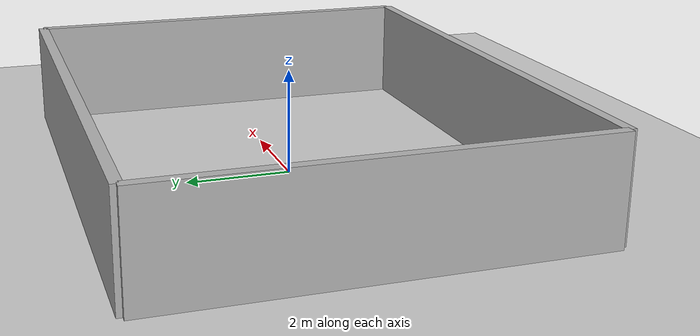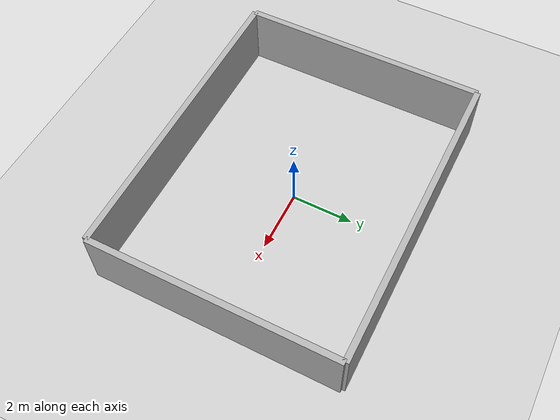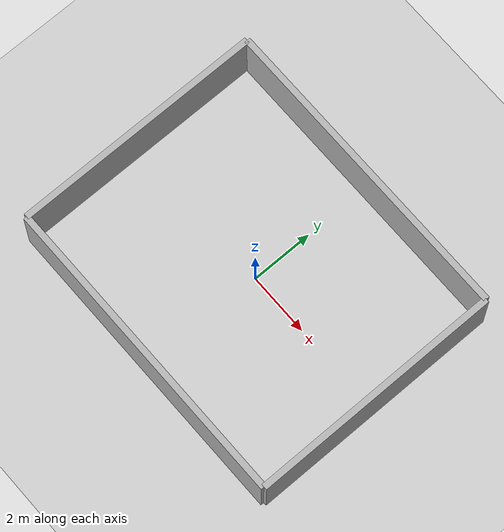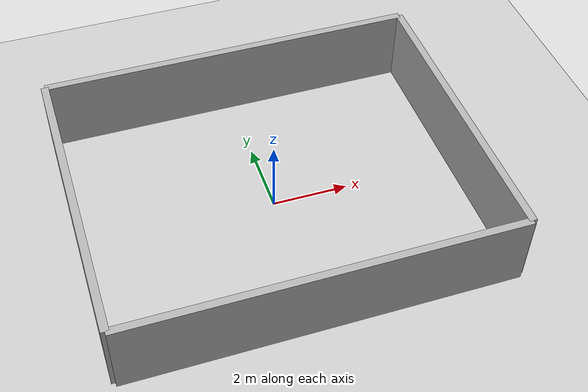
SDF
<?xml version="1.0" ?>
<sdf version="1.8">
  <world name="test_room">

    <!-- Physics settings -->
    <physics name="1ms" type="ignored">
      <max_step_size>0.001</max_step_size>
      <real_time_factor>1.0</real_time_factor>
    </physics>

    <!-- Plugins -->
    <plugin
      filename="gz-sim-physics-system"
      name="gz::sim::systems::Physics">
    </plugin>
    <plugin
      filename="gz-sim-user-commands-system"
      name="gz::sim::systems::UserCommands">
    </plugin>
    <plugin
      filename="gz-sim-scene-broadcaster-system"
      name="gz::sim::systems::SceneBroadcaster">
    </plugin>
    <plugin
      filename="gz-sim-sensors-system"
      name="gz::sim::systems::Sensors">
      <render_engine>ogre2</render_engine>
    </plugin>

    <!-- Sun light -->
    <light type="directional" name="sun">
      <cast_shadows>true</cast_shadows>
      <pose>0 0 10 0 0 0</pose>
      <diffuse>0.8 0.8 0.8 1</diffuse>
      <specular>0.2 0.2 0.2 1</specular>
      <attenuation>
        <range>1000</range>
        <constant>0.9</constant>
        <linear>0.01</linear>
        <quadratic>0.001</quadratic>
      </attenuation>
      <direction>-0.5 0.1 -0.9</direction>
    </light>

    <!-- Ambient light -->
    <light type="ambient" name="ambient">
      <diffuse>0.4 0.4 0.4 1</diffuse>
      <specular>0.1 0.1 0.1 1</specular>
    </light>

    <!-- Ground plane -->
    <model name="ground_plane">
      <static>true</static>
      <link name="link">
        <collision name="collision">
          <geometry>
            <plane>
              <normal>0 0 1</normal>
              <size>20 20</size>
            </plane>
          </geometry>
        </collision>
        <visual name="visual">
          <geometry>
            <plane>
              <normal>0 0 1</normal>
              <size>20 20</size>
            </plane>
          </geometry>
          <material>
            <ambient>0.8 0.8 0.8 1</ambient>
            <diffuse>0.8 0.8 0.8 1</diffuse>
            <specular>0.8 0.8 0.8 1</specular>
          </material>
        </visual>
      </link>
    </model>

    <!-- North Wall (10m long, 2m high) -->
    <model name="wall_north">
      <static>true</static>
      <pose>0 4 1 0 0 0</pose>
      <link name="link">
        <collision name="collision">
          <geometry>
            <box>
              <size>10 0.2 2</size>
            </box>
          </geometry>
        </collision>
        <visual name="visual">
          <geometry>
            <box>
              <size>10 0.2 2</size>
            </box>
          </geometry>
          <material>
            <ambient>0.7 0.7 0.7 1</ambient>
            <diffuse>0.7 0.7 0.7 1</diffuse>
          </material>
        </visual>
      </link>
    </model>

    <!-- South Wall (10m long, 2m high) -->
    <model name="wall_south">
      <static>true</static>
      <pose>0 -4 1 0 0 0</pose>
      <link name="link">
        <collision name="collision">
          <geometry>
            <box>
              <size>10 0.2 2</size>
            </box>
          </geometry>
        </collision>
        <visual name="visual">
          <geometry>
            <box>
              <size>10 0.2 2</size>
            </box>
          </geometry>
          <material>
            <ambient>0.7 0.7 0.7 1</ambient>
            <diffuse>0.7 0.7 0.7 1</diffuse>
          </material>
        </visual>
      </link>
    </model>

    <!-- East Wall (8m long, 2m high) -->
    <model name="wall_east">
      <static>true</static>
      <pose>5 0 1 0 0 0</pose>
      <link name="link">
        <collision name="collision">
          <geometry>
            <box>
              <size>0.2 8 2</size>
            </box>
          </geometry>
        </collision>
        <visual name="visual">
          <geometry>
            <box>
              <size>0.2 8 2</size>
            </box>
          </geometry>
          <material>
            <ambient>0.7 0.7 0.7 1</ambient>
            <diffuse>0.7 0.7 0.7 1</diffuse>
          </material>
        </visual>
      </link>
    </model>

    <!-- West Wall (8m long, 2m high) -->
    <model name="wall_west">
      <static>true</static>
      <pose>-5 0 1 0 0 0</pose>
      <link name="link">
        <collision name="collision">
          <geometry>
            <box>
              <size>0.2 8 2</size>
            </box>
          </geometry>
        </collision>
        <visual name="visual">
          <geometry>
            <box>
              <size>0.2 8 2</size>
            </box>
          </geometry>
          <material>
            <ambient>0.7 0.7 0.7 1</ambient>
            <diffuse>0.7 0.7 0.7 1</diffuse>
          </material>
        </visual>
      </link>
    </model>

  </world>
</sdf>
